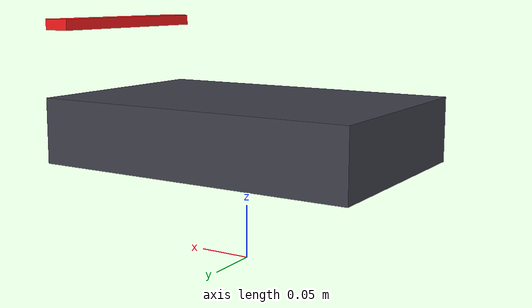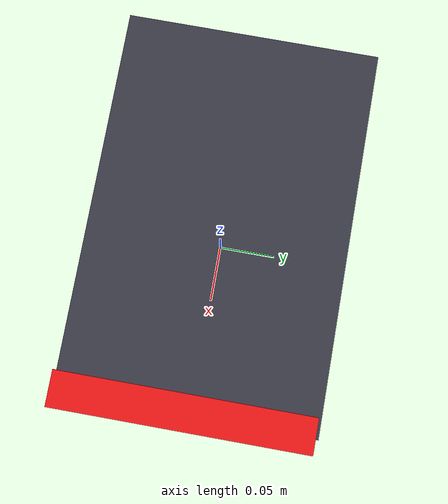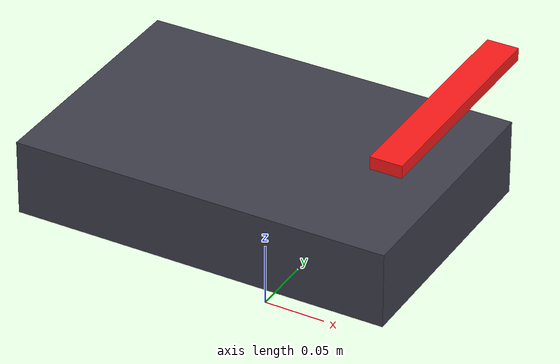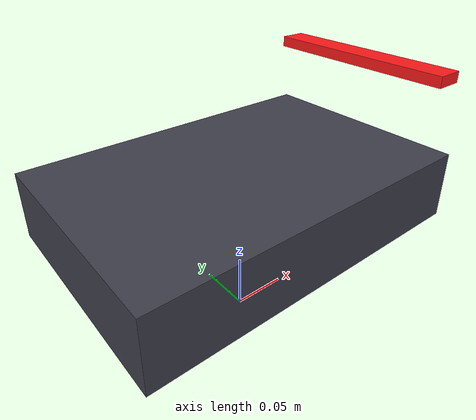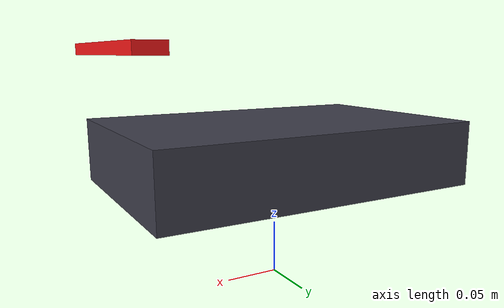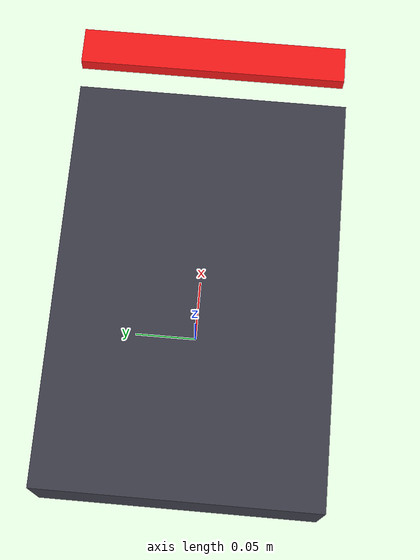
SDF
<?xml version="1.0"?>
<sdf version="1.8">
  <model name="swarm_bot">
    <pose>0 0 0.06 0 0 0</pose>
    <self_collide>false</self_collide>
    <static>false</static>

    <link name="chassis">
      <pose>0 0 0.06 0 0 0</pose>

      <inertial>
        <mass>1.2</mass>
        <inertia>
          <ixx>0.01</ixx>
          <iyy>0.02</iyy>
          <izz>0.03</izz>
          <ixy>0.0</ixy>
          <ixz>0.0</ixz>
          <iyz>0.0</iyz>
        </inertia>
      </inertial>

      <collision name="collision">
        <geometry>
          <box>
            <size>0.30 0.20 0.06</size>
          </box>
        </geometry>
      </collision>

      <visual name="visual_body">
        <geometry>
          <box>
            <size>0.30 0.20 0.06</size>
          </box>
        </geometry>
        <material>
          <ambient>0.20 0.20 0.25 1</ambient>
          <diffuse>0.25 0.25 0.30 1</diffuse>
          <specular>0.02 0.02 0.02 1</specular>
        </material>
      </visual>

      <!-- Small front marker only, for yaw/front direction. -->
      <visual name="front_marker">
        <pose>0.145 0 0.095 0 0 0</pose>
        <geometry>
          <box>
            <size>0.025 0.18 0.010</size>
          </box>
        </geometry>
        <material>
          <ambient>0.90 0.05 0.05 1</ambient>
          <diffuse>1.00 0.10 0.10 1</diffuse>
          <specular>0.02 0.02 0.02 1</specular>
        </material>
      </visual>
    </link>

    <link name="left_wheel">
      <pose>0 0.115 0.05 1.5708 0 0</pose>
      <inertial>
        <mass>0.12</mass>
        <inertia>
          <ixx>0.00025</ixx>
          <iyy>0.00025</iyy>
          <izz>0.00025</izz>
          <ixy>0.0</ixy>
          <ixz>0.0</ixz>
          <iyz>0.0</iyz>
        </inertia>
      </inertial>
      <collision name="collision">
        <geometry>
          <cylinder>
            <radius>0.05</radius>
            <length>0.03</length>
          </cylinder>
        </geometry>
        <surface>
          <friction>
            <ode>
              <mu>5.0</mu>
              <mu2>5.0</mu2>
            </ode>
          </friction>
        </surface>
      </collision>
    </link>

    <link name="right_wheel">
      <pose>0 -0.115 0.05 1.5708 0 0</pose>
      <inertial>
        <mass>0.12</mass>
        <inertia>
          <ixx>0.00025</ixx>
          <iyy>0.00025</iyy>
          <izz>0.00025</izz>
          <ixy>0.0</ixy>
          <ixz>0.0</ixz>
          <iyz>0.0</iyz>
        </inertia>
      </inertial>
      <collision name="collision">
        <geometry>
          <cylinder>
            <radius>0.05</radius>
            <length>0.03</length>
          </cylinder>
        </geometry>
        <surface>
          <friction>
            <ode>
              <mu>5.0</mu>
              <mu2>5.0</mu2>
            </ode>
          </friction>
        </surface>
      </collision>
    </link>

    <joint name="left_wheel_joint" type="revolute">
      <parent>chassis</parent>
      <child>left_wheel</child>
      <axis>
        <xyz expressed_in="__model__">0 1 0</xyz>
        <limit>
          <lower>-1e16</lower>
          <upper>1e16</upper>
        </limit>
        <dynamics>
          <damping>0.05</damping>
        </dynamics>
      </axis>
    </joint>

    <joint name="right_wheel_joint" type="revolute">
      <parent>chassis</parent>
      <child>right_wheel</child>
      <axis>
        <xyz expressed_in="__model__">0 1 0</xyz>
        <limit>
          <lower>-1e16</lower>
          <upper>1e16</upper>
        </limit>
        <dynamics>
          <damping>0.05</damping>
        </dynamics>
      </axis>
    </joint>

    <!-- Fixed rear support: cheaper than a ball-joint caster. -->
    <link name="caster">
      <pose>-0.12 0 0.025 0 0 0</pose>
      <inertial>
        <mass>0.02</mass>
        <inertia>
          <ixx>0.00003</ixx>
          <iyy>0.00003</iyy>
          <izz>0.00003</izz>
          <ixy>0.0</ixy>
          <ixz>0.0</ixz>
          <iyz>0.0</iyz>
        </inertia>
      </inertial>
      <collision name="collision">
        <geometry>
          <sphere>
            <radius>0.020</radius>
          </sphere>
        </geometry>
        <surface>
          <friction>
            <ode>
              <mu>0.05</mu>
              <mu2>0.05</mu2>
            </ode>
          </friction>
        </surface>
      </collision>
    </link>

    <joint name="caster_joint" type="fixed">
      <parent>chassis</parent>
      <child>caster</child>
    </joint>

    <plugin filename="gz-sim-diff-drive-system" name="gz::sim::systems::DiffDrive">
      <left_joint>left_wheel_joint</left_joint>
      <right_joint>right_wheel_joint</right_joint>

      <wheel_separation>0.23</wheel_separation>
      <wheel_radius>0.05</wheel_radius>

      <frame_id>odom</frame_id>
      <child_frame_id>chassis</child_frame_id>

      <odom_publish_frequency>3</odom_publish_frequency>
    </plugin>
  </model>
</sdf>
